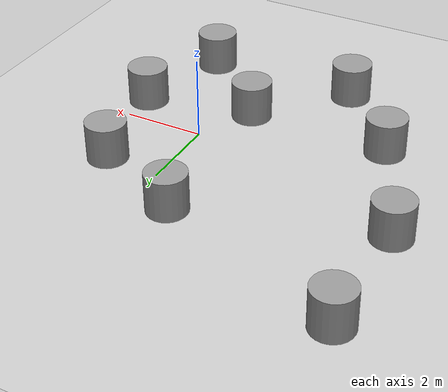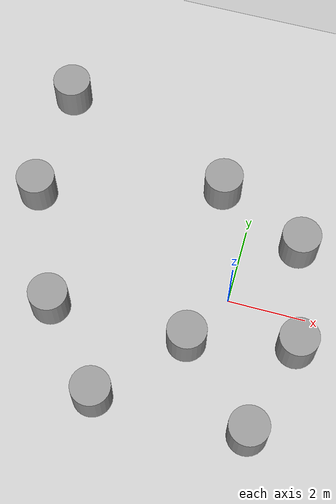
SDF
<sdf version="1.7">
 <world name="default">
  <light name="sun" type="directional">
   <pose>0 0 10 0 -0 0</pose>
   <diffuse>0.8 0.8 0.8 1</diffuse>
   <specular>0.2 0.2 0.2 1</specular>
   <attenuation>
    <range>1000</range>
    <constant>0.9</constant>
    <linear>0.01</linear>
    <quadratic>0.001</quadratic>
   </attenuation>
   <direction>-0.5 0.1 -0.9</direction>
   <spot><inner_angle>0</inner_angle><outer_angle>0</outer_angle><falloff>0</falloff></spot>
  </light>
  <model name="ground_plane">
   <static>1</static>
   <link name="link">
    <collision name="collision">
     <geometry><plane><normal>0 0 1</normal><size>100 100</size></plane></geometry>
     <surface>
      <contact><collide_bitmask>65535</collide_bitmask></contact>
      <friction><ode><mu>100</mu><mu2>50</mu2></ode></friction>
     </surface>
    </collision>
    <visual name="visual">
     <cast_shadows>0</cast_shadows>
     <geometry><plane><normal>0 0 1</normal><size>100 100</size></plane></geometry>
     <material>
      <script><uri>file://media/materials/scripts/gazebo.material</uri><name>Gazebo/Grey</name></script>
     </material>
    </visual>
   </link>
  </model>
  <gravity>0 0 -9.8</gravity>
  <magnetic_field>6e-06 2.3e-05 -4.2e-05</magnetic_field>
  <atmosphere type="adiabatic"/>
  <physics type="ode">
   <max_step_size>0.001</max_step_size>
   <real_time_factor>1</real_time_factor>
   <real_time_update_rate>1000</real_time_update_rate>
  </physics>
  <scene><ambient>0.4 0.4 0.4 1</ambient><background>0.7 0.7 0.7 1</background><shadows>1</shadows></scene>
  <audio><device>default</device></audio>
  <spherical_coordinates>
   <surface_model>EARTH_WGS84</surface_model>
   <latitude_deg>0</latitude_deg>
   <longitude_deg>0</longitude_deg>
   <elevation>0</elevation>
   <heading_deg>0</heading_deg>
  </spherical_coordinates>
  <model name="unit_cylinder">
   <pose>-5.62343 1.66757 0.499992 -3e-06 3e-06 0</pose>
   <link name="link">
    <inertial>
     <mass>1</mass>
     <inertia><ixx>0.145833</ixx><ixy>0</ixy><ixz>0</ixz><iyy>0.145833</iyy><iyz>0</iyz><izz>0.125</izz></inertia>
    </inertial>
    <collision name="collision">
     <geometry><cylinder><radius>0.5</radius><length>1</length></cylinder></geometry>
    </collision>
    <visual name="visual">
     <geometry><cylinder><radius>0.5</radius><length>1</length></cylinder></geometry>
     <material>
      <script><name>Gazebo/Grey</name><uri>file://media/materials/scripts/gazebo.material</uri></script>
     </material>
    </visual>
   </link>
  </model>
  <model name="unit_cylinder_0">
   <pose>-0.894523 2.98566 0.499998 3e-06 -4e-06 0</pose>
   <link name="link">
    <inertial>
     <mass>1</mass>
     <inertia><ixx>0.145833</ixx><ixy>0</ixy><ixz>0</ixz><iyy>0.145833</iyy><iyz>0</iyz><izz>0.125</izz></inertia>
    </inertial>
    <collision name="collision">
     <geometry><cylinder><radius>0.5</radius><length>1</length></cylinder></geometry>
    </collision>
    <visual name="visual">
     <geometry><cylinder><radius>0.5</radius><length>1</length></cylinder></geometry>
     <material>
      <script><name>Gazebo/Grey</name><uri>file://media/materials/scripts/gazebo.material</uri></script>
     </material>
    </visual>
   </link>
  </model>
  <model name="unit_cylinder_1">
   <pose>-5.60447 4.74579 0.499998 3e-06 -4e-06 0</pose>
   <link name="link">
    <inertial>
     <mass>1</mass>
     <inertia><ixx>0.145833</ixx><ixy>0</ixy><ixz>0</ixz><iyy>0.145833</iyy><iyz>0</iyz><izz>0.125</izz></inertia>
    </inertial>
    <collision name="collision">
     <geometry><cylinder><radius>0.5</radius><length>1</length></cylinder></geometry>
    </collision>
    <visual name="visual">
     <geometry><cylinder><radius>0.5</radius><length>1</length></cylinder></geometry>
     <material>
      <script><name>Gazebo/Grey</name><uri>file://media/materials/scripts/gazebo.material</uri></script>
     </material>
    </visual>
   </link>
  </model>
  <model name="unit_cylinder_2">
   <pose>-0.745493 -1.35863 0.499998 3e-06 -4e-06 0</pose>
   <link name="link">
    <inertial>
     <mass>1</mass>
     <inertia><ixx>0.145833</ixx><ixy>0</ixy><ixz>0</ixz><iyy>0.145833</iyy><iyz>0</iyz><izz>0.125</izz></inertia>
    </inertial>
    <collision name="collision">
     <geometry><cylinder><radius>0.5</radius><length>1</length></cylinder></geometry>
    </collision>
    <visual name="visual">
     <geometry><cylinder><radius>0.5</radius><length>1</length></cylinder></geometry>
     <material>
      <script><name>Gazebo/Grey</name><uri>file://media/materials/scripts/gazebo.material</uri></script>
     </material>
    </visual>
   </link>
  </model>
  <model name="unit_cylinder_3">
   <pose>1.92463 -0.816909 0.499992 -3e-06 4e-06 0</pose>
   <link name="link">
    <inertial>
     <mass>1</mass>
     <inertia><ixx>0.145833</ixx><ixy>0</ixy><ixz>0</ixz><iyy>0.145833</iyy><iyz>0</iyz><izz>0.125</izz></inertia>
    </inertial>
    <collision name="collision">
     <geometry><cylinder><radius>0.5</radius><length>1</length></cylinder></geometry>
    </collision>
    <visual name="visual">
     <geometry><cylinder><radius>0.5</radius><length>1</length></cylinder></geometry>
     <material>
      <script><name>Gazebo/Grey</name><uri>file://media/materials/scripts/gazebo.material</uri></script>
     </material>
    </visual>
   </link>
  </model>
  <model name="unit_cylinder_4">
   <pose>-4.30888 -1.31206 0.499998 3e-06 4e-06 -0</pose>
   <link name="link">
    <inertial>
     <mass>1</mass>
     <inertia><ixx>0.145833</ixx><ixy>0</ixy><ixz>0</ixz><iyy>0.145833</iyy><iyz>0</iyz><izz>0.125</izz></inertia>
    </inertial>
    <collision name="collision">
     <geometry><cylinder><radius>0.5</radius><length>1</length></cylinder></geometry>
    </collision>
    <visual name="visual">
     <geometry><cylinder><radius>0.5</radius><length>1</length></cylinder></geometry>
     <material>
      <script><name>Gazebo/Grey</name><uri>file://media/materials/scripts/gazebo.material</uri></script>
     </material>
    </visual>
   </link>
  </model>
  <model name="unit_cylinder_5">
   <pose>-2.59015 -3.32218 0.499993 -3e-06 -4e-06 -0</pose>
   <link name="link">
    <inertial>
     <mass>1</mass>
     <inertia><ixx>0.145833</ixx><ixy>0</ixy><ixz>0</ixz><iyy>0.145833</iyy><iyz>0</iyz><izz>0.125</izz></inertia>
    </inertial>
    <collision name="collision">
     <geometry><cylinder><radius>0.5</radius><length>1</length></cylinder></geometry>
    </collision>
    <visual name="visual">
     <geometry><cylinder><radius>0.5</radius><length>1</length></cylinder></geometry>
     <material>
      <script><name>Gazebo/Grey</name><uri>file://media/materials/scripts/gazebo.material</uri></script>
     </material>
    </visual>
   </link>
  </model>
  <model name="unit_cylinder_6">
   <pose>1.40993 1.85348 0.499997 3e-06 4e-06 -0</pose>
   <link name="link">
    <inertial>
     <mass>1</mass>
     <inertia><ixx>0.145833</ixx><ixy>0</ixy><ixz>0</ixz><iyy>0.145833</iyy><iyz>0</iyz><izz>0.125</izz></inertia>
    </inertial>
    <collision name="collision">
     <geometry><cylinder><radius>0.5</radius><length>1</length></cylinder></geometry>
    </collision>
    <visual name="visual">
     <geometry><cylinder><radius>0.5</radius><length>1</length></cylinder></geometry>
     <material>
      <script><name>Gazebo/Grey</name><uri>file://media/materials/scripts/gazebo.material</uri></script>
     </material>
    </visual>
   </link>
  </model>
  <model name="unit_cylinder_7">
   <pose>1.25641 -3.2561 0.499997 3e-06 4e-06 -0</pose>
   <link name="link">
    <inertial>
     <mass>1</mass>
     <inertia><ixx>0.145833</ixx><ixy>0</ixy><ixz>0</ixz><iyy>0.145833</iyy><iyz>0</iyz><izz>0.125</izz></inertia>
    </inertial>
    <collision name="collision">
     <geometry><cylinder><radius>0.5</radius><length>1</length></cylinder></geometry>
    </collision>
    <visual name="visual">
     <geometry><cylinder><radius>0.5</radius><length>1</length></cylinder></geometry>
     <material>
      <script><name>Gazebo/Grey</name><uri>file://media/materials/scripts/gazebo.material</uri></script>
     </material>
    </visual>
   </link>
  </model>
 </world>
</sdf>
